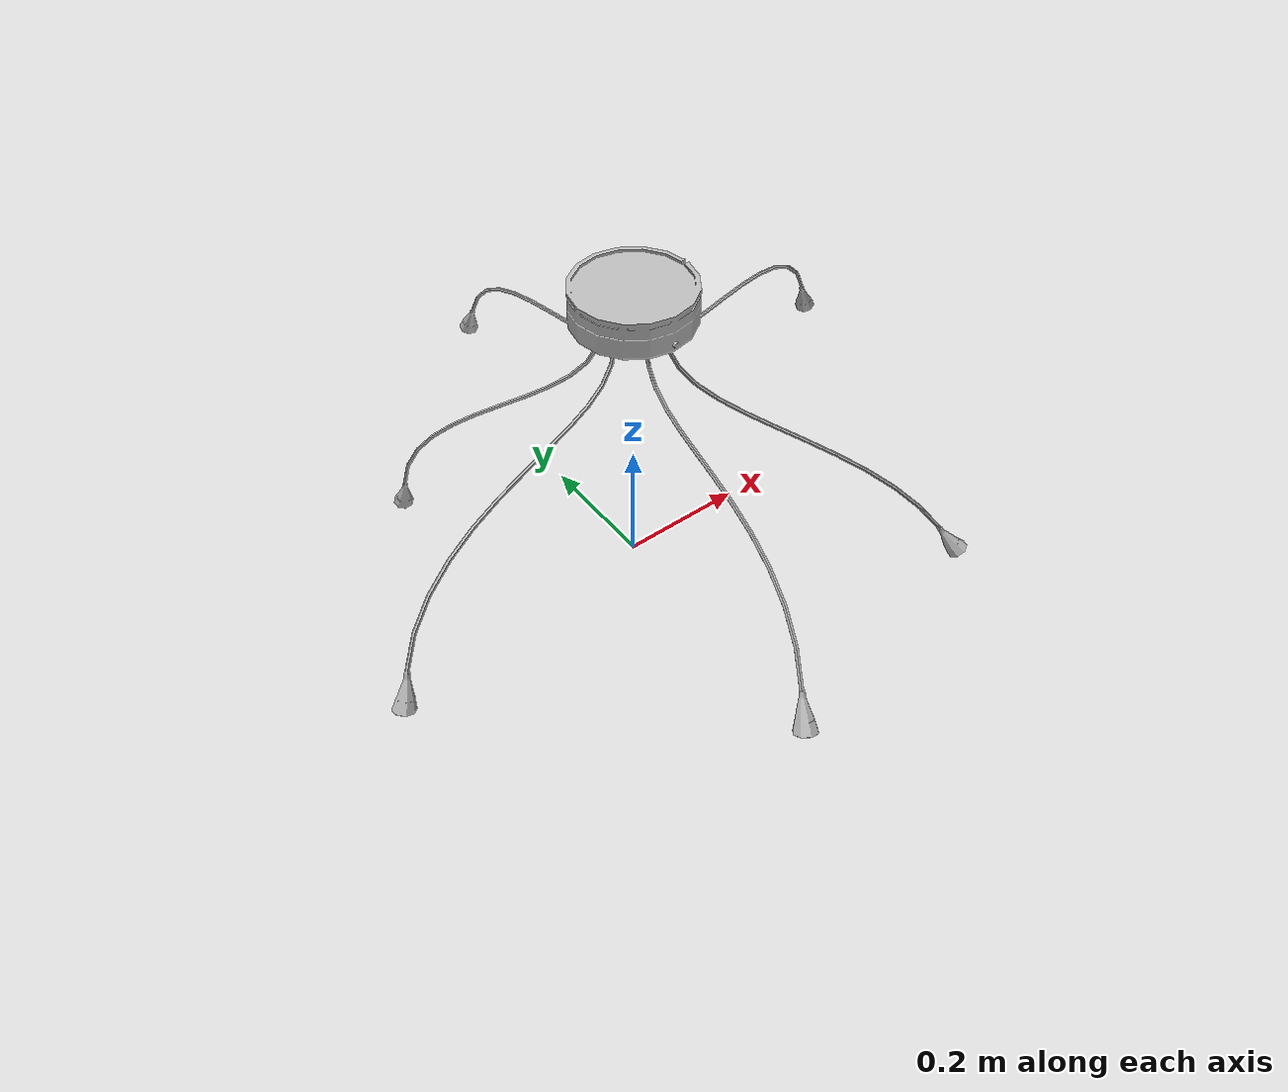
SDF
<?xml version='1.0'?>
<sdf version='1.4'>
  <model name='s__479'>
    <pose>0 0 0 0 0 0</pose>
    <static>true</static>
    <link name='link'>
      <collision name='collision'>
        <pose>0 0 0 0 0 0</pose>
        <geometry>
          <box>
            <size>0.98 1.03 2</size>
          </box>
        </geometry>
      </collision>
      <visual name='visual'>
        <pose>0 0 0 0 0 0</pose>
        <geometry>
          <mesh><uri>model://s__479/s__479.dae</uri></mesh>
        </geometry>
      </visual>
    </link>
  </model>
</sdf>
